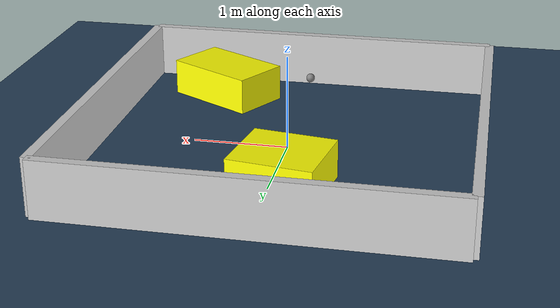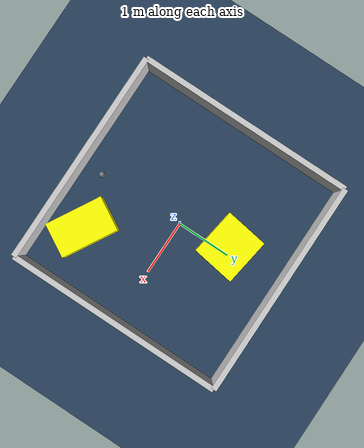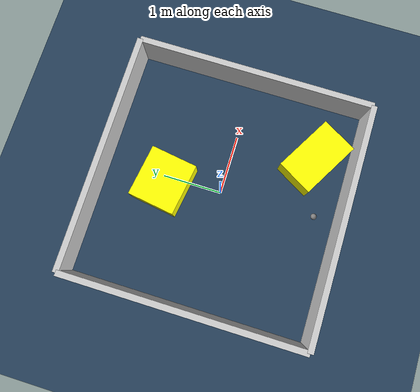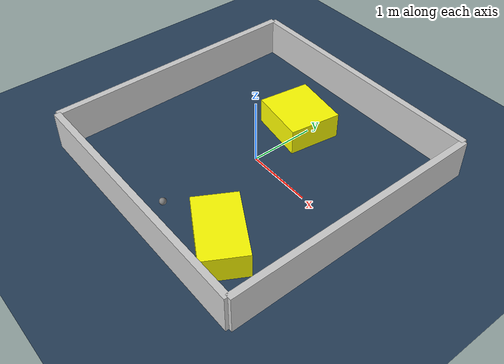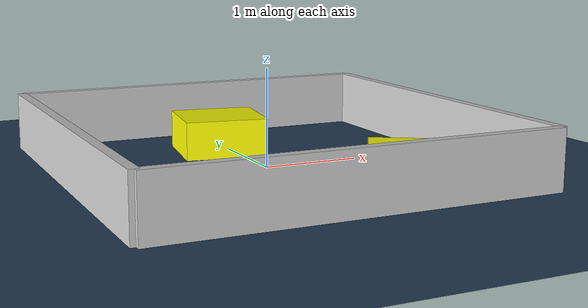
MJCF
<?xml version="1.0" ?>
<mujoco model="generated_environment">
  <option timestep="0.01" integrator="RK4" cone="elliptic"/>
  <default>
    <geom density="1"/>
  </default>
  <asset>
    <texture builtin="gradient" height="3072" rgb1="0.3 0.5 0.7" rgb2="0 0 0" type="skybox" width="512"/>
    <texture builtin="checker" height="300" mark="edge" markrgb="0.8 0.8 0.8" name="groundplane" rgb1="0.2 0.3 0.4" rgb2="0.1 0.2 0.3" type="2d" width="300"/>
    <material name="groundplane" reflectance="0.2" texrepeat="5 5" texture="groundplane" texuniform="true"/>
    <material name="robot" rgba="0.0 1.0 0.0 1"/>
  </asset>
  <worldbody>
    <light dir="0 0 -1" directional="true" pos="0 0 1.5"/>
    <geom condim="4" friction="1.0 0.005 0.001" material="groundplane" name="floor" size="0 0 0.05" type="plane"/>
    <body name="walls">
      <geom name="wall_1" condim="4" pos="-2.0 0.0 0.3" rgba="0.800000011920929 0.800000011920929 0.800000011920929 1.0" size="0.05 2.0 0.3" type="box"/>
      <geom name="wall_2" condim="4" pos="2.0 0.0 0.3" rgba="0.800000011920929 0.800000011920929 0.800000011920929 1.0" size="0.05 2.0 0.3" type="box"/>
      <geom name="wall_3" condim="4" pos="0.0 -2.0 0.3" rgba="0.800000011920929 0.800000011920929 0.800000011920929 1.0" size="2.0 0.05 0.3" type="box"/>
      <geom name="wall_4" condim="4" pos="0.0 2.0 0.3" rgba="0.800000011920929 0.800000011920929 0.800000011920929 1.0" size="2.0 0.05 0.3" type="box"/>
    </body>
    <body name="robot">
      <joint name="joint_x" type="slide" pos="0 0 0" axis="1 0 0"/>
      <joint name="joint_y" type="slide" pos="0 0 0" axis="0 1 0"/>
      <geom name="robot" type="sphere" pos="0.03745348009113192 -1.5891641821391753 0.2" size="0.05" mass="5." friction="1.0 0.005 0.0001" condim="4"/>
      <site name="sensor_ball"/>
    </body>
    <body name="obstacle_1_movable">
      <geom name="obstacle_1_movable" condim="4" pos="-0.13214775592226924 0.935766940890197 0.2" euler="0 0 81.36217078926485" friction="1.0 0.005 0.001" rgba="1 1 0 1" size="0.3957514424902079 0.4367526608909439 0.2" type="box" mass="0.1"/>
      <joint type="free"/>
    </body>
    <body name="obstacle_2_movable">
      <geom name="obstacle_2_movable" condim="4" pos="0.9789818763340834 -1.3574864097603752 0.2" euler="0 0 60.22954191564792" friction="1.0 0.005 0.001" rgba="1 1 0 1" size="0.32239998058548397 0.5277036858218864 0.2" type="box" mass="0.1"/>
      <joint type="free"/>
    </body>
  </worldbody>
  <actuator>
    <motor name="actuator_x" joint="joint_x" gear="1" ctrlrange="-1 1"/>
    <motor name="actuator_y" joint="joint_y" gear="1" ctrlrange="-1 1"/>
  </actuator>
</mujoco>
